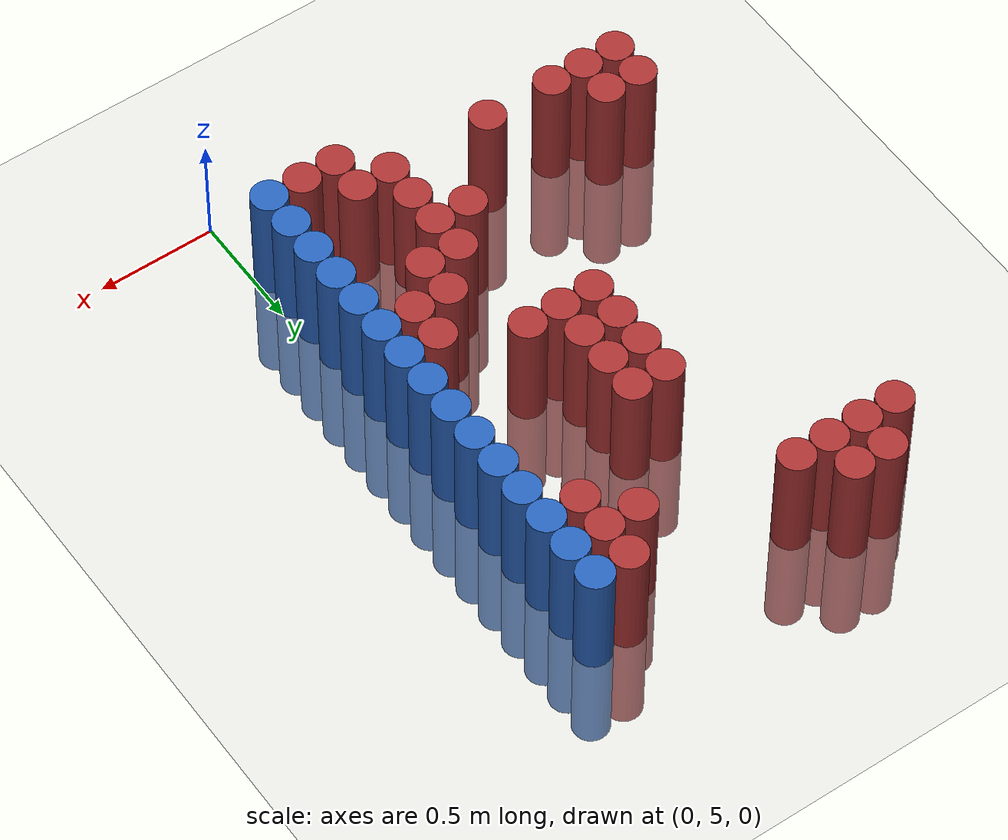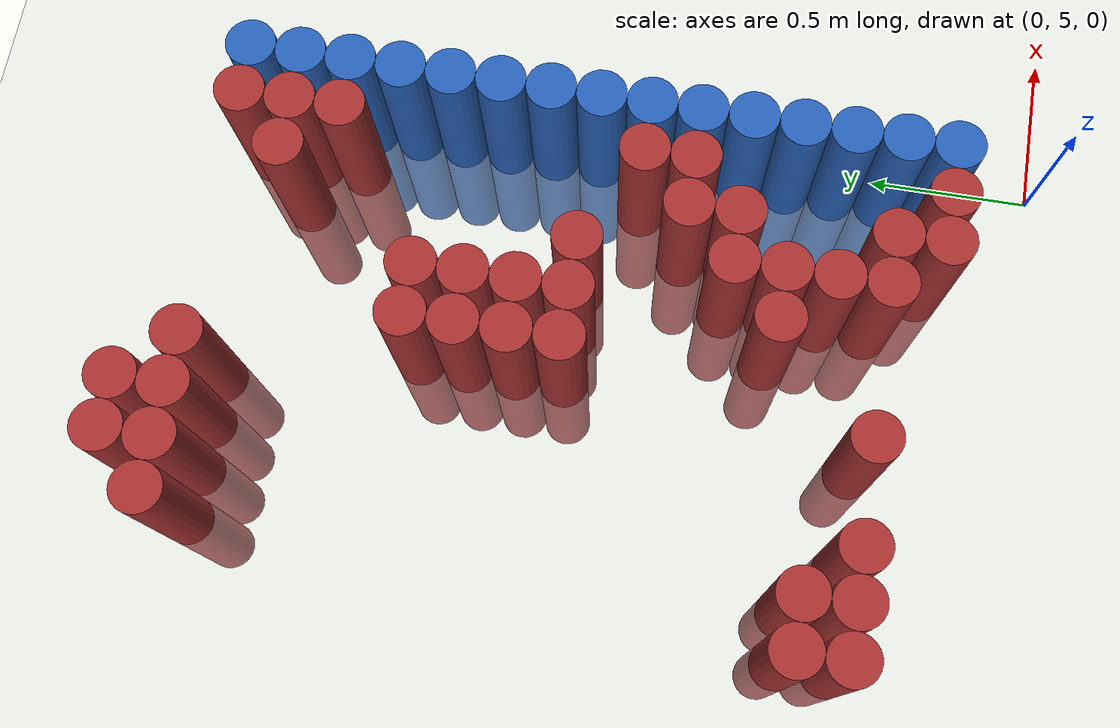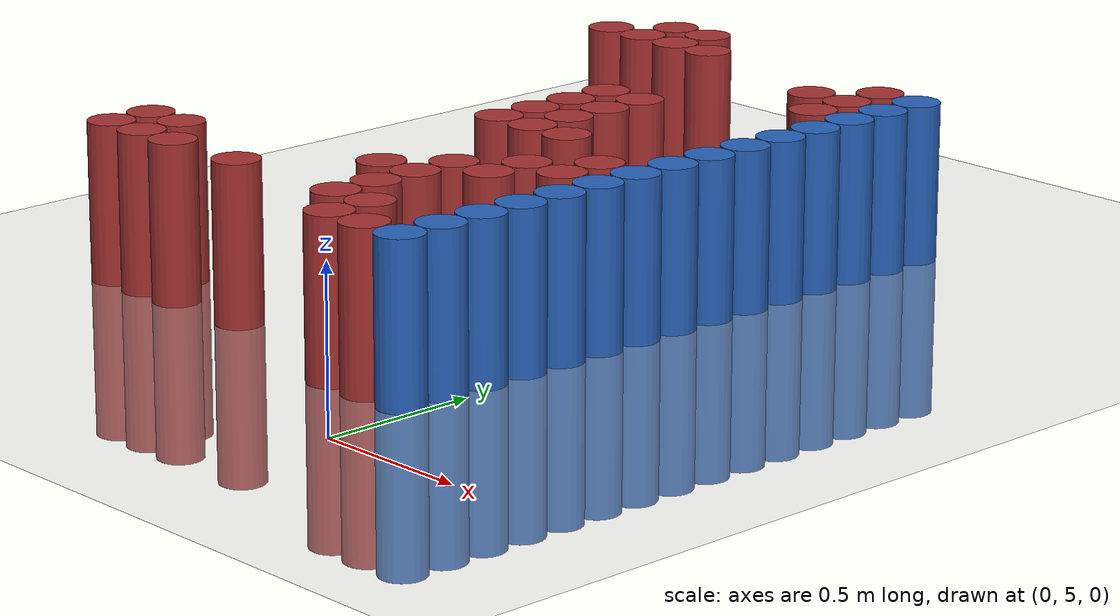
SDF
<sdf version="1.6">
 <world name="default">
  <model name="ground_plane">
   <static>1</static>
   <link name="link">
    <collision name="collision">
     <geometry><plane><normal>0 0 1</normal><size>100 100</size></plane></geometry>
     <surface><friction><ode><mu>100</mu><mu2>50</mu2></ode></friction></surface>
    </collision>
    <visual name="visual">
     <cast_shadows>0</cast_shadows>
     <geometry><plane><normal>0 0 1</normal><size>100 100</size></plane></geometry>
     <material>
      <script><uri>file://media/materials/scripts/gazebo.material</uri><name>Gazebo/Grey</name></script>
     </material>
    </visual>
   </link>
  </model>
  <model name="unit_cylinder_157">
   <static>1</static>
   <pose>-1.575000 5.475000 0.000000 0.000000 0.000000 0.000000</pose>
   <link name="link">
    <inertial>
     <mass>1</mass>
     <inertia><ixx>0.145833</ixx><ixy>0</ixy><ixz>0</ixz><iyy>0.145833</iyy><iyz>0</iyz><izz>0.125</izz></inertia>
    </inertial>
    <collision name="collision">
     <geometry><cylinder><radius>0.075000</radius><length>1</length></cylinder></geometry>
    </collision>
    <visual name="visual">
     <geometry><cylinder><radius>0.075000</radius><length>1</length></cylinder></geometry>
     <material>
      <ambient>0.648000 0.192000 0.192000 1</ambient>
      <diffuse>0.648000 0.192000 0.192000 1</diffuse>
     </material>
     <material>
      <script><name>Gazebo/Grey</name><uri>file://media/materials/scripts/gazebo.material</uri></script>
     </material>
    </visual>
   </link>
  </model>
  <model name="unit_cylinder_158">
   <static>1</static>
   <pose>-1.575000 5.625000 0.000000 0.000000 0.000000 0.000000</pose>
   <link name="link">
    <inertial>
     <mass>1</mass>
     <inertia><ixx>0.145833</ixx><ixy>0</ixy><ixz>0</ixz><iyy>0.145833</iyy><iyz>0</iyz><izz>0.125</izz></inertia>
    </inertial>
    <collision name="collision">
     <geometry><cylinder><radius>0.075000</radius><length>1</length></cylinder></geometry>
    </collision>
    <visual name="visual">
     <geometry><cylinder><radius>0.075000</radius><length>1</length></cylinder></geometry>
     <material>
      <ambient>0.648000 0.192000 0.192000 1</ambient>
      <diffuse>0.648000 0.192000 0.192000 1</diffuse>
     </material>
     <material>
      <script><name>Gazebo/Grey</name><uri>file://media/materials/scripts/gazebo.material</uri></script>
     </material>
    </visual>
   </link>
  </model>
  <model name="unit_cylinder_161">
   <static>1</static>
   <pose>-1.425000 5.475000 0.000000 0.000000 0.000000 0.000000</pose>
   <link name="link">
    <inertial>
     <mass>1</mass>
     <inertia><ixx>0.145833</ixx><ixy>0</ixy><ixz>0</ixz><iyy>0.145833</iyy><iyz>0</iyz><izz>0.125</izz></inertia>
    </inertial>
    <collision name="collision">
     <geometry><cylinder><radius>0.075000</radius><length>1</length></cylinder></geometry>
    </collision>
    <visual name="visual">
     <geometry><cylinder><radius>0.075000</radius><length>1</length></cylinder></geometry>
     <material>
      <ambient>0.648000 0.192000 0.192000 1</ambient>
      <diffuse>0.648000 0.192000 0.192000 1</diffuse>
     </material>
     <material>
      <script><name>Gazebo/Grey</name><uri>file://media/materials/scripts/gazebo.material</uri></script>
     </material>
    </visual>
   </link>
  </model>
  <model name="unit_cylinder_162">
   <static>1</static>
   <pose>-1.425000 5.625000 0.000000 0.000000 0.000000 0.000000</pose>
   <link name="link">
    <inertial>
     <mass>1</mass>
     <inertia><ixx>0.145833</ixx><ixy>0</ixy><ixz>0</ixz><iyy>0.145833</iyy><iyz>0</iyz><izz>0.125</izz></inertia>
    </inertial>
    <collision name="collision">
     <geometry><cylinder><radius>0.075000</radius><length>1</length></cylinder></geometry>
    </collision>
    <visual name="visual">
     <geometry><cylinder><radius>0.075000</radius><length>1</length></cylinder></geometry>
     <material>
      <ambient>0.648000 0.192000 0.192000 1</ambient>
      <diffuse>0.648000 0.192000 0.192000 1</diffuse>
     </material>
     <material>
      <script><name>Gazebo/Grey</name><uri>file://media/materials/scripts/gazebo.material</uri></script>
     </material>
    </visual>
   </link>
  </model>
  <model name="unit_cylinder_163">
   <static>1</static>
   <pose>-1.425000 7.425000 0.000000 0.000000 0.000000 0.000000</pose>
   <link name="link">
    <inertial>
     <mass>1</mass>
     <inertia><ixx>0.145833</ixx><ixy>0</ixy><ixz>0</ixz><iyy>0.145833</iyy><iyz>0</iyz><izz>0.125</izz></inertia>
    </inertial>
    <collision name="collision">
     <geometry><cylinder><radius>0.075000</radius><length>1</length></cylinder></geometry>
    </collision>
    <visual name="visual">
     <geometry><cylinder><radius>0.075000</radius><length>1</length></cylinder></geometry>
     <material>
      <ambient>0.648000 0.192000 0.192000 1</ambient>
      <diffuse>0.648000 0.192000 0.192000 1</diffuse>
     </material>
     <material>
      <script><name>Gazebo/Grey</name><uri>file://media/materials/scripts/gazebo.material</uri></script>
     </material>
    </visual>
   </link>
  </model>
  <model name="unit_cylinder_164">
   <static>1</static>
   <pose>-1.275000 5.475000 0.000000 0.000000 0.000000 0.000000</pose>
   <link name="link">
    <inertial>
     <mass>1</mass>
     <inertia><ixx>0.145833</ixx><ixy>0</ixy><ixz>0</ixz><iyy>0.145833</iyy><iyz>0</iyz><izz>0.125</izz></inertia>
    </inertial>
    <collision name="collision">
     <geometry><cylinder><radius>0.075000</radius><length>1</length></cylinder></geometry>
    </collision>
    <visual name="visual">
     <geometry><cylinder><radius>0.075000</radius><length>1</length></cylinder></geometry>
     <material>
      <ambient>0.648000 0.192000 0.192000 1</ambient>
      <diffuse>0.648000 0.192000 0.192000 1</diffuse>
     </material>
     <material>
      <script><name>Gazebo/Grey</name><uri>file://media/materials/scripts/gazebo.material</uri></script>
     </material>
    </visual>
   </link>
  </model>
  <model name="unit_cylinder_165">
   <static>1</static>
   <pose>-1.275000 7.425000 0.000000 0.000000 0.000000 0.000000</pose>
   <link name="link">
    <inertial>
     <mass>1</mass>
     <inertia><ixx>0.145833</ixx><ixy>0</ixy><ixz>0</ixz><iyy>0.145833</iyy><iyz>0</iyz><izz>0.125</izz></inertia>
    </inertial>
    <collision name="collision">
     <geometry><cylinder><radius>0.075000</radius><length>1</length></cylinder></geometry>
    </collision>
    <visual name="visual">
     <geometry><cylinder><radius>0.075000</radius><length>1</length></cylinder></geometry>
     <material>
      <ambient>0.648000 0.192000 0.192000 1</ambient>
      <diffuse>0.648000 0.192000 0.192000 1</diffuse>
     </material>
     <material>
      <script><name>Gazebo/Grey</name><uri>file://media/materials/scripts/gazebo.material</uri></script>
     </material>
    </visual>
   </link>
  </model>
  <model name="unit_cylinder_166">
   <static>1</static>
   <pose>-1.275000 7.575000 0.000000 0.000000 0.000000 0.000000</pose>
   <link name="link">
    <inertial>
     <mass>1</mass>
     <inertia><ixx>0.145833</ixx><ixy>0</ixy><ixz>0</ixz><iyy>0.145833</iyy><iyz>0</iyz><izz>0.125</izz></inertia>
    </inertial>
    <collision name="collision">
     <geometry><cylinder><radius>0.075000</radius><length>1</length></cylinder></geometry>
    </collision>
    <visual name="visual">
     <geometry><cylinder><radius>0.075000</radius><length>1</length></cylinder></geometry>
     <material>
      <ambient>0.648000 0.192000 0.192000 1</ambient>
      <diffuse>0.648000 0.192000 0.192000 1</diffuse>
     </material>
     <material>
      <script><name>Gazebo/Grey</name><uri>file://media/materials/scripts/gazebo.material</uri></script>
     </material>
    </visual>
   </link>
  </model>
  <model name="unit_cylinder_170">
   <static>1</static>
   <pose>-1.125000 7.425000 0.000000 0.000000 0.000000 0.000000</pose>
   <link name="link">
    <inertial>
     <mass>1</mass>
     <inertia><ixx>0.145833</ixx><ixy>0</ixy><ixz>0</ixz><iyy>0.145833</iyy><iyz>0</iyz><izz>0.125</izz></inertia>
    </inertial>
    <collision name="collision">
     <geometry><cylinder><radius>0.075000</radius><length>1</length></cylinder></geometry>
    </collision>
    <visual name="visual">
     <geometry><cylinder><radius>0.075000</radius><length>1</length></cylinder></geometry>
     <material>
      <ambient>0.648000 0.192000 0.192000 1</ambient>
      <diffuse>0.648000 0.192000 0.192000 1</diffuse>
     </material>
     <material>
      <script><name>Gazebo/Grey</name><uri>file://media/materials/scripts/gazebo.material</uri></script>
     </material>
    </visual>
   </link>
  </model>
  <model name="unit_cylinder_171">
   <static>1</static>
   <pose>-1.125000 7.575000 0.000000 0.000000 0.000000 0.000000</pose>
   <link name="link">
    <inertial>
     <mass>1</mass>
     <inertia><ixx>0.145833</ixx><ixy>0</ixy><ixz>0</ixz><iyy>0.145833</iyy><iyz>0</iyz><izz>0.125</izz></inertia>
    </inertial>
    <collision name="collision">
     <geometry><cylinder><radius>0.075000</radius><length>1</length></cylinder></geometry>
    </collision>
    <visual name="visual">
     <geometry><cylinder><radius>0.075000</radius><length>1</length></cylinder></geometry>
     <material>
      <ambient>0.648000 0.192000 0.192000 1</ambient>
      <diffuse>0.648000 0.192000 0.192000 1</diffuse>
     </material>
     <material>
      <script><name>Gazebo/Grey</name><uri>file://media/materials/scripts/gazebo.material</uri></script>
     </material>
    </visual>
   </link>
  </model>
  <model name="unit_cylinder_180">
   <static>1</static>
   <pose>-0.975000 5.475000 0.000000 0.000000 0.000000 0.000000</pose>
   <link name="link">
    <inertial>
     <mass>1</mass>
     <inertia><ixx>0.145833</ixx><ixy>0</ixy><ixz>0</ixz><iyy>0.145833</iyy><iyz>0</iyz><izz>0.125</izz></inertia>
    </inertial>
    <collision name="collision">
     <geometry><cylinder><radius>0.075000</radius><length>1</length></cylinder></geometry>
    </collision>
    <visual name="visual">
     <geometry><cylinder><radius>0.075000</radius><length>1</length></cylinder></geometry>
     <material>
      <ambient>0.648000 0.192000 0.192000 1</ambient>
      <diffuse>0.648000 0.192000 0.192000 1</diffuse>
     </material>
     <material>
      <script><name>Gazebo/Grey</name><uri>file://media/materials/scripts/gazebo.material</uri></script>
     </material>
    </visual>
   </link>
  </model>
  <model name="unit_cylinder_181">
   <static>1</static>
   <pose>-0.975000 7.425000 0.000000 0.000000 0.000000 0.000000</pose>
   <link name="link">
    <inertial>
     <mass>1</mass>
     <inertia><ixx>0.145833</ixx><ixy>0</ixy><ixz>0</ixz><iyy>0.145833</iyy><iyz>0</iyz><izz>0.125</izz></inertia>
    </inertial>
    <collision name="collision">
     <geometry><cylinder><radius>0.075000</radius><length>1</length></cylinder></geometry>
    </collision>
    <visual name="visual">
     <geometry><cylinder><radius>0.075000</radius><length>1</length></cylinder></geometry>
     <material>
      <ambient>0.648000 0.192000 0.192000 1</ambient>
      <diffuse>0.648000 0.192000 0.192000 1</diffuse>
     </material>
     <material>
      <script><name>Gazebo/Grey</name><uri>file://media/materials/scripts/gazebo.material</uri></script>
     </material>
    </visual>
   </link>
  </model>
  <model name="unit_cylinder_191">
   <static>1</static>
   <pose>-0.825000 6.375000 0.000000 0.000000 0.000000 0.000000</pose>
   <link name="link">
    <inertial>
     <mass>1</mass>
     <inertia><ixx>0.145833</ixx><ixy>0</ixy><ixz>0</ixz><iyy>0.145833</iyy><iyz>0</iyz><izz>0.125</izz></inertia>
    </inertial>
    <collision name="collision">
     <geometry><cylinder><radius>0.075000</radius><length>1</length></cylinder></geometry>
    </collision>
    <visual name="visual">
     <geometry><cylinder><radius>0.075000</radius><length>1</length></cylinder></geometry>
     <material>
      <ambient>0.648000 0.192000 0.192000 1</ambient>
      <diffuse>0.648000 0.192000 0.192000 1</diffuse>
     </material>
     <material>
      <script><name>Gazebo/Grey</name><uri>file://media/materials/scripts/gazebo.material</uri></script>
     </material>
    </visual>
   </link>
  </model>
  <model name="unit_cylinder_192">
   <static>1</static>
   <pose>-0.825000 6.525000 0.000000 0.000000 0.000000 0.000000</pose>
   <link name="link">
    <inertial>
     <mass>1</mass>
     <inertia><ixx>0.145833</ixx><ixy>0</ixy><ixz>0</ixz><iyy>0.145833</iyy><iyz>0</iyz><izz>0.125</izz></inertia>
    </inertial>
    <collision name="collision">
     <geometry><cylinder><radius>0.075000</radius><length>1</length></cylinder></geometry>
    </collision>
    <visual name="visual">
     <geometry><cylinder><radius>0.075000</radius><length>1</length></cylinder></geometry>
     <material>
      <ambient>0.648000 0.192000 0.192000 1</ambient>
      <diffuse>0.648000 0.192000 0.192000 1</diffuse>
     </material>
     <material>
      <script><name>Gazebo/Grey</name><uri>file://media/materials/scripts/gazebo.material</uri></script>
     </material>
    </visual>
   </link>
  </model>
  <model name="unit_cylinder_193">
   <static>1</static>
   <pose>-0.825000 6.675000 0.000000 0.000000 0.000000 0.000000</pose>
   <link name="link">
    <inertial>
     <mass>1</mass>
     <inertia><ixx>0.145833</ixx><ixy>0</ixy><ixz>0</ixz><iyy>0.145833</iyy><iyz>0</iyz><izz>0.125</izz></inertia>
    </inertial>
    <collision name="collision">
     <geometry><cylinder><radius>0.075000</radius><length>1</length></cylinder></geometry>
    </collision>
    <visual name="visual">
     <geometry><cylinder><radius>0.075000</radius><length>1</length></cylinder></geometry>
     <material>
      <ambient>0.648000 0.192000 0.192000 1</ambient>
      <diffuse>0.648000 0.192000 0.192000 1</diffuse>
     </material>
     <material>
      <script><name>Gazebo/Grey</name><uri>file://media/materials/scripts/gazebo.material</uri></script>
     </material>
    </visual>
   </link>
  </model>
  <model name="unit_cylinder_194">
   <static>1</static>
   <pose>-0.825000 6.825000 0.000000 0.000000 0.000000 0.000000</pose>
   <link name="link">
    <inertial>
     <mass>1</mass>
     <inertia><ixx>0.145833</ixx><ixy>0</ixy><ixz>0</ixz><iyy>0.145833</iyy><iyz>0</iyz><izz>0.125</izz></inertia>
    </inertial>
    <collision name="collision">
     <geometry><cylinder><radius>0.075000</radius><length>1</length></cylinder></geometry>
    </collision>
    <visual name="visual">
     <geometry><cylinder><radius>0.075000</radius><length>1</length></cylinder></geometry>
     <material>
      <ambient>0.648000 0.192000 0.192000 1</ambient>
      <diffuse>0.648000 0.192000 0.192000 1</diffuse>
     </material>
     <material>
      <script><name>Gazebo/Grey</name><uri>file://media/materials/scripts/gazebo.material</uri></script>
     </material>
    </visual>
   </link>
  </model>
  <model name="unit_cylinder_197">
   <static>1</static>
   <pose>-0.675000 5.775000 0.000000 0.000000 0.000000 0.000000</pose>
   <link name="link">
    <inertial>
     <mass>1</mass>
     <inertia><ixx>0.145833</ixx><ixy>0</ixy><ixz>0</ixz><iyy>0.145833</iyy><iyz>0</iyz><izz>0.125</izz></inertia>
    </inertial>
    <collision name="collision">
     <geometry><cylinder><radius>0.075000</radius><length>1</length></cylinder></geometry>
    </collision>
    <visual name="visual">
     <geometry><cylinder><radius>0.075000</radius><length>1</length></cylinder></geometry>
     <material>
      <ambient>0.648000 0.192000 0.192000 1</ambient>
      <diffuse>0.648000 0.192000 0.192000 1</diffuse>
     </material>
     <material>
      <script><name>Gazebo/Grey</name><uri>file://media/materials/scripts/gazebo.material</uri></script>
     </material>
    </visual>
   </link>
  </model>
  <model name="unit_cylinder_198">
   <static>1</static>
   <pose>-0.675000 6.375000 0.000000 0.000000 0.000000 0.000000</pose>
   <link name="link">
    <inertial>
     <mass>1</mass>
     <inertia><ixx>0.145833</ixx><ixy>0</ixy><ixz>0</ixz><iyy>0.145833</iyy><iyz>0</iyz><izz>0.125</izz></inertia>
    </inertial>
    <collision name="collision">
     <geometry><cylinder><radius>0.075000</radius><length>1</length></cylinder></geometry>
    </collision>
    <visual name="visual">
     <geometry><cylinder><radius>0.075000</radius><length>1</length></cylinder></geometry>
     <material>
      <ambient>0.648000 0.192000 0.192000 1</ambient>
      <diffuse>0.648000 0.192000 0.192000 1</diffuse>
     </material>
     <material>
      <script><name>Gazebo/Grey</name><uri>file://media/materials/scripts/gazebo.material</uri></script>
     </material>
    </visual>
   </link>
  </model>
  <model name="unit_cylinder_199">
   <static>1</static>
   <pose>-0.675000 6.525000 0.000000 0.000000 0.000000 0.000000</pose>
   <link name="link">
    <inertial>
     <mass>1</mass>
     <inertia><ixx>0.145833</ixx><ixy>0</ixy><ixz>0</ixz><iyy>0.145833</iyy><iyz>0</iyz><izz>0.125</izz></inertia>
    </inertial>
    <collision name="collision">
     <geometry><cylinder><radius>0.075000</radius><length>1</length></cylinder></geometry>
    </collision>
    <visual name="visual">
     <geometry><cylinder><radius>0.075000</radius><length>1</length></cylinder></geometry>
     <material>
      <ambient>0.648000 0.192000 0.192000 1</ambient>
      <diffuse>0.648000 0.192000 0.192000 1</diffuse>
     </material>
     <material>
      <script><name>Gazebo/Grey</name><uri>file://media/materials/scripts/gazebo.material</uri></script>
     </material>
    </visual>
   </link>
  </model>
  <model name="unit_cylinder_200">
   <static>1</static>
   <pose>-0.675000 6.675000 0.000000 0.000000 0.000000 0.000000</pose>
   <link name="link">
    <inertial>
     <mass>1</mass>
     <inertia><ixx>0.145833</ixx><ixy>0</ixy><ixz>0</ixz><iyy>0.145833</iyy><iyz>0</iyz><izz>0.125</izz></inertia>
    </inertial>
    <collision name="collision">
     <geometry><cylinder><radius>0.075000</radius><length>1</length></cylinder></geometry>
    </collision>
    <visual name="visual">
     <geometry><cylinder><radius>0.075000</radius><length>1</length></cylinder></geometry>
     <material>
      <ambient>0.648000 0.192000 0.192000 1</ambient>
      <diffuse>0.648000 0.192000 0.192000 1</diffuse>
     </material>
     <material>
      <script><name>Gazebo/Grey</name><uri>file://media/materials/scripts/gazebo.material</uri></script>
     </material>
    </visual>
   </link>
  </model>
  <model name="unit_cylinder_201">
   <static>1</static>
   <pose>-0.675000 6.825000 0.000000 0.000000 0.000000 0.000000</pose>
   <link name="link">
    <inertial>
     <mass>1</mass>
     <inertia><ixx>0.145833</ixx><ixy>0</ixy><ixz>0</ixz><iyy>0.145833</iyy><iyz>0</iyz><izz>0.125</izz></inertia>
    </inertial>
    <collision name="collision">
     <geometry><cylinder><radius>0.075000</radius><length>1</length></cylinder></geometry>
    </collision>
    <visual name="visual">
     <geometry><cylinder><radius>0.075000</radius><length>1</length></cylinder></geometry>
     <material>
      <ambient>0.648000 0.192000 0.192000 1</ambient>
      <diffuse>0.648000 0.192000 0.192000 1</diffuse>
     </material>
     <material>
      <script><name>Gazebo/Grey</name><uri>file://media/materials/scripts/gazebo.material</uri></script>
     </material>
    </visual>
   </link>
  </model>
  <model name="unit_cylinder_202">
   <static>1</static>
   <pose>-0.525000 5.475000 0.000000 0.000000 0.000000 0.000000</pose>
   <link name="link">
    <inertial>
     <mass>1</mass>
     <inertia><ixx>0.145833</ixx><ixy>0</ixy><ixz>0</ixz><iyy>0.145833</iyy><iyz>0</iyz><izz>0.125</izz></inertia>
    </inertial>
    <collision name="collision">
     <geometry><cylinder><radius>0.075000</radius><length>1</length></cylinder></geometry>
    </collision>
    <visual name="visual">
     <geometry><cylinder><radius>0.075000</radius><length>1</length></cylinder></geometry>
     <material>
      <ambient>0.648000 0.192000 0.192000 1</ambient>
      <diffuse>0.648000 0.192000 0.192000 1</diffuse>
     </material>
     <material>
      <script><name>Gazebo/Grey</name><uri>file://media/materials/scripts/gazebo.material</uri></script>
     </material>
    </visual>
   </link>
  </model>
  <model name="unit_cylinder_203">
   <static>1</static>
   <pose>-0.525000 5.625000 0.000000 0.000000 0.000000 0.000000</pose>
   <link name="link">
    <inertial>
     <mass>1</mass>
     <inertia><ixx>0.145833</ixx><ixy>0</ixy><ixz>0</ixz><iyy>0.145833</iyy><iyz>0</iyz><izz>0.125</izz></inertia>
    </inertial>
    <collision name="collision">
     <geometry><cylinder><radius>0.075000</radius><length>1</length></cylinder></geometry>
    </collision>
    <visual name="visual">
     <geometry><cylinder><radius>0.075000</radius><length>1</length></cylinder></geometry>
     <material>
      <ambient>0.648000 0.192000 0.192000 1</ambient>
      <diffuse>0.648000 0.192000 0.192000 1</diffuse>
     </material>
     <material>
      <script><name>Gazebo/Grey</name><uri>file://media/materials/scripts/gazebo.material</uri></script>
     </material>
    </visual>
   </link>
  </model>
  <model name="unit_cylinder_204">
   <static>1</static>
   <pose>-0.525000 5.775000 0.000000 0.000000 0.000000 0.000000</pose>
   <link name="link">
    <inertial>
     <mass>1</mass>
     <inertia><ixx>0.145833</ixx><ixy>0</ixy><ixz>0</ixz><iyy>0.145833</iyy><iyz>0</iyz><izz>0.125</izz></inertia>
    </inertial>
    <collision name="collision">
     <geometry><cylinder><radius>0.075000</radius><length>1</length></cylinder></geometry>
    </collision>
    <visual name="visual">
     <geometry><cylinder><radius>0.075000</radius><length>1</length></cylinder></geometry>
     <material>
      <ambient>0.648000 0.192000 0.192000 1</ambient>
      <diffuse>0.648000 0.192000 0.192000 1</diffuse>
     </material>
     <material>
      <script><name>Gazebo/Grey</name><uri>file://media/materials/scripts/gazebo.material</uri></script>
     </material>
    </visual>
   </link>
  </model>
  <model name="unit_cylinder_205">
   <static>1</static>
   <pose>-0.525000 5.925000 0.000000 0.000000 0.000000 0.000000</pose>
   <link name="link">
    <inertial>
     <mass>1</mass>
     <inertia><ixx>0.145833</ixx><ixy>0</ixy><ixz>0</ixz><iyy>0.145833</iyy><iyz>0</iyz><izz>0.125</izz></inertia>
    </inertial>
    <collision name="collision">
     <geometry><cylinder><radius>0.075000</radius><length>1</length></cylinder></geometry>
    </collision>
    <visual name="visual">
     <geometry><cylinder><radius>0.075000</radius><length>1</length></cylinder></geometry>
     <material>
      <ambient>0.648000 0.192000 0.192000 1</ambient>
      <diffuse>0.648000 0.192000 0.192000 1</diffuse>
     </material>
     <material>
      <script><name>Gazebo/Grey</name><uri>file://media/materials/scripts/gazebo.material</uri></script>
     </material>
    </visual>
   </link>
  </model>
  <model name="unit_cylinder_206">
   <static>1</static>
   <pose>-0.525000 6.375000 0.000000 0.000000 0.000000 0.000000</pose>
   <link name="link">
    <inertial>
     <mass>1</mass>
     <inertia><ixx>0.145833</ixx><ixy>0</ixy><ixz>0</ixz><iyy>0.145833</iyy><iyz>0</iyz><izz>0.125</izz></inertia>
    </inertial>
    <collision name="collision">
     <geometry><cylinder><radius>0.075000</radius><length>1</length></cylinder></geometry>
    </collision>
    <visual name="visual">
     <geometry><cylinder><radius>0.075000</radius><length>1</length></cylinder></geometry>
     <material>
      <ambient>0.648000 0.192000 0.192000 1</ambient>
      <diffuse>0.648000 0.192000 0.192000 1</diffuse>
     </material>
     <material>
      <script><name>Gazebo/Grey</name><uri>file://media/materials/scripts/gazebo.material</uri></script>
     </material>
    </visual>
   </link>
  </model>
  <model name="unit_cylinder_209">
   <static>1</static>
   <pose>-0.375000 5.325000 0.000000 0.000000 0.000000 0.000000</pose>
   <link name="link">
    <inertial>
     <mass>1</mass>
     <inertia><ixx>0.145833</ixx><ixy>0</ixy><ixz>0</ixz><iyy>0.145833</iyy><iyz>0</iyz><izz>0.125</izz></inertia>
    </inertial>
    <collision name="collision">
     <geometry><cylinder><radius>0.075000</radius><length>1</length></cylinder></geometry>
    </collision>
    <visual name="visual">
     <geometry><cylinder><radius>0.075000</radius><length>1</length></cylinder></geometry>
     <material>
      <ambient>0.648000 0.192000 0.192000 1</ambient>
      <diffuse>0.648000 0.192000 0.192000 1</diffuse>
     </material>
     <material>
      <script><name>Gazebo/Grey</name><uri>file://media/materials/scripts/gazebo.material</uri></script>
     </material>
    </visual>
   </link>
  </model>
  <model name="unit_cylinder_210">
   <static>1</static>
   <pose>-0.375000 5.475000 0.000000 0.000000 0.000000 0.000000</pose>
   <link name="link">
    <inertial>
     <mass>1</mass>
     <inertia><ixx>0.145833</ixx><ixy>0</ixy><ixz>0</ixz><iyy>0.145833</iyy><iyz>0</iyz><izz>0.125</izz></inertia>
    </inertial>
    <collision name="collision">
     <geometry><cylinder><radius>0.075000</radius><length>1</length></cylinder></geometry>
    </collision>
    <visual name="visual">
     <geometry><cylinder><radius>0.075000</radius><length>1</length></cylinder></geometry>
     <material>
      <ambient>0.648000 0.192000 0.192000 1</ambient>
      <diffuse>0.648000 0.192000 0.192000 1</diffuse>
     </material>
     <material>
      <script><name>Gazebo/Grey</name><uri>file://media/materials/scripts/gazebo.material</uri></script>
     </material>
    </visual>
   </link>
  </model>
  <model name="unit_cylinder_211">
   <static>1</static>
   <pose>-0.375000 5.925000 0.000000 0.000000 0.000000 0.000000</pose>
   <link name="link">
    <inertial>
     <mass>1</mass>
     <inertia><ixx>0.145833</ixx><ixy>0</ixy><ixz>0</ixz><iyy>0.145833</iyy><iyz>0</iyz><izz>0.125</izz></inertia>
    </inertial>
    <collision name="collision">
     <geometry><cylinder><radius>0.075000</radius><length>1</length></cylinder></geometry>
    </collision>
    <visual name="visual">
     <geometry><cylinder><radius>0.075000</radius><length>1</length></cylinder></geometry>
     <material>
      <ambient>0.648000 0.192000 0.192000 1</ambient>
      <diffuse>0.648000 0.192000 0.192000 1</diffuse>
     </material>
     <material>
      <script><name>Gazebo/Grey</name><uri>file://media/materials/scripts/gazebo.material</uri></script>
     </material>
    </visual>
   </link>
  </model>
  <model name="unit_cylinder_212">
   <static>1</static>
   <pose>-0.375000 6.075000 0.000000 0.000000 0.000000 0.000000</pose>
   <link name="link">
    <inertial>
     <mass>1</mass>
     <inertia><ixx>0.145833</ixx><ixy>0</ixy><ixz>0</ixz><iyy>0.145833</iyy><iyz>0</iyz><izz>0.125</izz></inertia>
    </inertial>
    <collision name="collision">
     <geometry><cylinder><radius>0.075000</radius><length>1</length></cylinder></geometry>
    </collision>
    <visual name="visual">
     <geometry><cylinder><radius>0.075000</radius><length>1</length></cylinder></geometry>
     <material>
      <ambient>0.648000 0.192000 0.192000 1</ambient>
      <diffuse>0.648000 0.192000 0.192000 1</diffuse>
     </material>
     <material>
      <script><name>Gazebo/Grey</name><uri>file://media/materials/scripts/gazebo.material</uri></script>
     </material>
    </visual>
   </link>
  </model>
  <model name="unit_cylinder_213">
   <static>1</static>
   <pose>-0.375000 7.275000 0.000000 0.000000 0.000000 0.000000</pose>
   <link name="link">
    <inertial>
     <mass>1</mass>
     <inertia><ixx>0.145833</ixx><ixy>0</ixy><ixz>0</ixz><iyy>0.145833</iyy><iyz>0</iyz><izz>0.125</izz></inertia>
    </inertial>
    <collision name="collision">
     <geometry><cylinder><radius>0.075000</radius><length>1</length></cylinder></geometry>
    </collision>
    <visual name="visual">
     <geometry><cylinder><radius>0.075000</radius><length>1</length></cylinder></geometry>
     <material>
      <ambient>0.648000 0.192000 0.192000 1</ambient>
      <diffuse>0.648000 0.192000 0.192000 1</diffuse>
     </material>
     <material>
      <script><name>Gazebo/Grey</name><uri>file://media/materials/scripts/gazebo.material</uri></script>
     </material>
    </visual>
   </link>
  </model>
  <model name="unit_cylinder_221">
   <static>1</static>
   <pose>-0.225000 5.325000 0.000000 0.000000 0.000000 0.000000</pose>
   <link name="link">
    <inertial>
     <mass>1</mass>
     <inertia><ixx>0.145833</ixx><ixy>0</ixy><ixz>0</ixz><iyy>0.145833</iyy><iyz>0</iyz><izz>0.125</izz></inertia>
    </inertial>
    <collision name="collision">
     <geometry><cylinder><radius>0.075000</radius><length>1</length></cylinder></geometry>
    </collision>
    <visual name="visual">
     <geometry><cylinder><radius>0.075000</radius><length>1</length></cylinder></geometry>
     <material>
      <ambient>0.648000 0.192000 0.192000 1</ambient>
      <diffuse>0.648000 0.192000 0.192000 1</diffuse>
     </material>
     <material>
      <script><name>Gazebo/Grey</name><uri>file://media/materials/scripts/gazebo.material</uri></script>
     </material>
    </visual>
   </link>
  </model>
  <model name="unit_cylinder_222">
   <static>1</static>
   <pose>-0.225000 6.075000 0.000000 0.000000 0.000000 0.000000</pose>
   <link name="link">
    <inertial>
     <mass>1</mass>
     <inertia><ixx>0.145833</ixx><ixy>0</ixy><ixz>0</ixz><iyy>0.145833</iyy><iyz>0</iyz><izz>0.125</izz></inertia>
    </inertial>
    <collision name="collision">
     <geometry><cylinder><radius>0.075000</radius><length>1</length></cylinder></geometry>
    </collision>
    <visual name="visual">
     <geometry><cylinder><radius>0.075000</radius><length>1</length></cylinder></geometry>
     <material>
      <ambient>0.648000 0.192000 0.192000 1</ambient>
      <diffuse>0.648000 0.192000 0.192000 1</diffuse>
     </material>
     <material>
      <script><name>Gazebo/Grey</name><uri>file://media/materials/scripts/gazebo.material</uri></script>
     </material>
    </visual>
   </link>
  </model>
  <model name="unit_cylinder_223">
   <static>1</static>
   <pose>-0.225000 6.225000 0.000000 0.000000 0.000000 0.000000</pose>
   <link name="link">
    <inertial>
     <mass>1</mass>
     <inertia><ixx>0.145833</ixx><ixy>0</ixy><ixz>0</ixz><iyy>0.145833</iyy><iyz>0</iyz><izz>0.125</izz></inertia>
    </inertial>
    <collision name="collision">
     <geometry><cylinder><radius>0.075000</radius><length>1</length></cylinder></geometry>
    </collision>
    <visual name="visual">
     <geometry><cylinder><radius>0.075000</radius><length>1</length></cylinder></geometry>
     <material>
      <ambient>0.648000 0.192000 0.192000 1</ambient>
      <diffuse>0.648000 0.192000 0.192000 1</diffuse>
     </material>
     <material>
      <script><name>Gazebo/Grey</name><uri>file://media/materials/scripts/gazebo.material</uri></script>
     </material>
    </visual>
   </link>
  </model>
  <model name="unit_cylinder_224">
   <static>1</static>
   <pose>-0.225000 7.125000 0.000000 0.000000 0.000000 0.000000</pose>
   <link name="link">
    <inertial>
     <mass>1</mass>
     <inertia><ixx>0.145833</ixx><ixy>0</ixy><ixz>0</ixz><iyy>0.145833</iyy><iyz>0</iyz><izz>0.125</izz></inertia>
    </inertial>
    <collision name="collision">
     <geometry><cylinder><radius>0.075000</radius><length>1</length></cylinder></geometry>
    </collision>
    <visual name="visual">
     <geometry><cylinder><radius>0.075000</radius><length>1</length></cylinder></geometry>
     <material>
      <ambient>0.648000 0.192000 0.192000 1</ambient>
      <diffuse>0.648000 0.192000 0.192000 1</diffuse>
     </material>
     <material>
      <script><name>Gazebo/Grey</name><uri>file://media/materials/scripts/gazebo.material</uri></script>
     </material>
    </visual>
   </link>
  </model>
  <model name="unit_cylinder_225">
   <static>1</static>
   <pose>-0.225000 7.275000 0.000000 0.000000 0.000000 0.000000</pose>
   <link name="link">
    <inertial>
     <mass>1</mass>
     <inertia><ixx>0.145833</ixx><ixy>0</ixy><ixz>0</ixz><iyy>0.145833</iyy><iyz>0</iyz><izz>0.125</izz></inertia>
    </inertial>
    <collision name="collision">
     <geometry><cylinder><radius>0.075000</radius><length>1</length></cylinder></geometry>
    </collision>
    <visual name="visual">
     <geometry><cylinder><radius>0.075000</radius><length>1</length></cylinder></geometry>
     <material>
      <ambient>0.648000 0.192000 0.192000 1</ambient>
      <diffuse>0.648000 0.192000 0.192000 1</diffuse>
     </material>
     <material>
      <script><name>Gazebo/Grey</name><uri>file://media/materials/scripts/gazebo.material</uri></script>
     </material>
    </visual>
   </link>
  </model>
  <model name="unit_cylinder_226">
   <static>1</static>
   <pose>-0.225000 7.425000 0.000000 0.000000 0.000000 0.000000</pose>
   <link name="link">
    <inertial>
     <mass>1</mass>
     <inertia><ixx>0.145833</ixx><ixy>0</ixy><ixz>0</ixz><iyy>0.145833</iyy><iyz>0</iyz><izz>0.125</izz></inertia>
    </inertial>
    <collision name="collision">
     <geometry><cylinder><radius>0.075000</radius><length>1</length></cylinder></geometry>
    </collision>
    <visual name="visual">
     <geometry><cylinder><radius>0.075000</radius><length>1</length></cylinder></geometry>
     <material>
      <ambient>0.648000 0.192000 0.192000 1</ambient>
      <diffuse>0.648000 0.192000 0.192000 1</diffuse>
     </material>
     <material>
      <script><name>Gazebo/Grey</name><uri>file://media/materials/scripts/gazebo.material</uri></script>
     </material>
    </visual>
   </link>
  </model>
  <model name="unit_cylinder_235">
   <static>1</static>
   <pose>-0.075000 5.325000 0.000000 0.000000 0.000000 0.000000</pose>
   <link name="link">
    <inertial>
     <mass>1</mass>
     <inertia><ixx>0.145833</ixx><ixy>0</ixy><ixz>0</ixz><iyy>0.145833</iyy><iyz>0</iyz><izz>0.125</izz></inertia>
    </inertial>
    <collision name="collision">
     <geometry><cylinder><radius>0.075000</radius><length>1</length></cylinder></geometry>
    </collision>
    <visual name="visual">
     <geometry><cylinder><radius>0.075000</radius><length>1</length></cylinder></geometry>
     <material>
      <ambient>0.152000 0.379000 0.720000 1</ambient>
      <diffuse>0.152000 0.379000 0.720000 1</diffuse>
     </material>
     <material>
      <script><name>Gazebo/Grey</name><uri>file://media/materials/scripts/gazebo.material</uri></script>
     </material>
    </visual>
   </link>
  </model>
  <model name="unit_cylinder_236">
   <static>1</static>
   <pose>-0.075000 5.475000 0.000000 0.000000 0.000000 0.000000</pose>
   <link name="link">
    <inertial>
     <mass>1</mass>
     <inertia><ixx>0.145833</ixx><ixy>0</ixy><ixz>0</ixz><iyy>0.145833</iyy><iyz>0</iyz><izz>0.125</izz></inertia>
    </inertial>
    <collision name="collision">
     <geometry><cylinder><radius>0.075000</radius><length>1</length></cylinder></geometry>
    </collision>
    <visual name="visual">
     <geometry><cylinder><radius>0.075000</radius><length>1</length></cylinder></geometry>
     <material>
      <ambient>0.152000 0.379000 0.720000 1</ambient>
      <diffuse>0.152000 0.379000 0.720000 1</diffuse>
     </material>
     <material>
      <script><name>Gazebo/Grey</name><uri>file://media/materials/scripts/gazebo.material</uri></script>
     </material>
    </visual>
   </link>
  </model>
  <model name="unit_cylinder_237">
   <static>1</static>
   <pose>-0.075000 5.625000 0.000000 0.000000 0.000000 0.000000</pose>
   <link name="link">
    <inertial>
     <mass>1</mass>
     <inertia><ixx>0.145833</ixx><ixy>0</ixy><ixz>0</ixz><iyy>0.145833</iyy><iyz>0</iyz><izz>0.125</izz></inertia>
    </inertial>
    <collision name="collision">
     <geometry><cylinder><radius>0.075000</radius><length>1</length></cylinder></geometry>
    </collision>
    <visual name="visual">
     <geometry><cylinder><radius>0.075000</radius><length>1</length></cylinder></geometry>
     <material>
      <ambient>0.152000 0.379000 0.720000 1</ambient>
      <diffuse>0.152000 0.379000 0.720000 1</diffuse>
     </material>
     <material>
      <script><name>Gazebo/Grey</name><uri>file://media/materials/scripts/gazebo.material</uri></script>
     </material>
    </visual>
   </link>
  </model>
  <model name="unit_cylinder_238">
   <static>1</static>
   <pose>-0.075000 5.775000 0.000000 0.000000 0.000000 0.000000</pose>
   <link name="link">
    <inertial>
     <mass>1</mass>
     <inertia><ixx>0.145833</ixx><ixy>0</ixy><ixz>0</ixz><iyy>0.145833</iyy><iyz>0</iyz><izz>0.125</izz></inertia>
    </inertial>
    <collision name="collision">
     <geometry><cylinder><radius>0.075000</radius><length>1</length></cylinder></geometry>
    </collision>
    <visual name="visual">
     <geometry><cylinder><radius>0.075000</radius><length>1</length></cylinder></geometry>
     <material>
      <ambient>0.152000 0.379000 0.720000 1</ambient>
      <diffuse>0.152000 0.379000 0.720000 1</diffuse>
     </material>
     <material>
      <script><name>Gazebo/Grey</name><uri>file://media/materials/scripts/gazebo.material</uri></script>
     </material>
    </visual>
   </link>
  </model>
  <model name="unit_cylinder_239">
   <static>1</static>
   <pose>-0.075000 5.925000 0.000000 0.000000 0.000000 0.000000</pose>
   <link name="link">
    <inertial>
     <mass>1</mass>
     <inertia><ixx>0.145833</ixx><ixy>0</ixy><ixz>0</ixz><iyy>0.145833</iyy><iyz>0</iyz><izz>0.125</izz></inertia>
    </inertial>
    <collision name="collision">
     <geometry><cylinder><radius>0.075000</radius><length>1</length></cylinder></geometry>
    </collision>
    <visual name="visual">
     <geometry><cylinder><radius>0.075000</radius><length>1</length></cylinder></geometry>
     <material>
      <ambient>0.152000 0.379000 0.720000 1</ambient>
      <diffuse>0.152000 0.379000 0.720000 1</diffuse>
     </material>
     <material>
      <script><name>Gazebo/Grey</name><uri>file://media/materials/scripts/gazebo.material</uri></script>
     </material>
    </visual>
   </link>
  </model>
  <model name="unit_cylinder_240">
   <static>1</static>
   <pose>-0.075000 6.075000 0.000000 0.000000 0.000000 0.000000</pose>
   <link name="link">
    <inertial>
     <mass>1</mass>
     <inertia><ixx>0.145833</ixx><ixy>0</ixy><ixz>0</ixz><iyy>0.145833</iyy><iyz>0</iyz><izz>0.125</izz></inertia>
    </inertial>
    <collision name="collision">
     <geometry><cylinder><radius>0.075000</radius><length>1</length></cylinder></geometry>
    </collision>
    <visual name="visual">
     <geometry><cylinder><radius>0.075000</radius><length>1</length></cylinder></geometry>
     <material>
      <ambient>0.152000 0.379000 0.720000 1</ambient>
      <diffuse>0.152000 0.379000 0.720000 1</diffuse>
     </material>
     <material>
      <script><name>Gazebo/Grey</name><uri>file://media/materials/scripts/gazebo.material</uri></script>
     </material>
    </visual>
   </link>
  </model>
  <model name="unit_cylinder_241">
   <static>1</static>
   <pose>-0.075000 6.225000 0.000000 0.000000 0.000000 0.000000</pose>
   <link name="link">
    <inertial>
     <mass>1</mass>
     <inertia><ixx>0.145833</ixx><ixy>0</ixy><ixz>0</ixz><iyy>0.145833</iyy><iyz>0</iyz><izz>0.125</izz></inertia>
    </inertial>
    <collision name="collision">
     <geometry><cylinder><radius>0.075000</radius><length>1</length></cylinder></geometry>
    </collision>
    <visual name="visual">
     <geometry><cylinder><radius>0.075000</radius><length>1</length></cylinder></geometry>
     <material>
      <ambient>0.152000 0.379000 0.720000 1</ambient>
      <diffuse>0.152000 0.379000 0.720000 1</diffuse>
     </material>
     <material>
      <script><name>Gazebo/Grey</name><uri>file://media/materials/scripts/gazebo.material</uri></script>
     </material>
    </visual>
   </link>
  </model>
  <model name="unit_cylinder_242">
   <static>1</static>
   <pose>-0.075000 6.375000 0.000000 0.000000 0.000000 0.000000</pose>
   <link name="link">
    <inertial>
     <mass>1</mass>
     <inertia><ixx>0.145833</ixx><ixy>0</ixy><ixz>0</ixz><iyy>0.145833</iyy><iyz>0</iyz><izz>0.125</izz></inertia>
    </inertial>
    <collision name="collision">
     <geometry><cylinder><radius>0.075000</radius><length>1</length></cylinder></geometry>
    </collision>
    <visual name="visual">
     <geometry><cylinder><radius>0.075000</radius><length>1</length></cylinder></geometry>
     <material>
      <ambient>0.152000 0.379000 0.720000 1</ambient>
      <diffuse>0.152000 0.379000 0.720000 1</diffuse>
     </material>
     <material>
      <script><name>Gazebo/Grey</name><uri>file://media/materials/scripts/gazebo.material</uri></script>
     </material>
    </visual>
   </link>
  </model>
  <model name="unit_cylinder_243">
   <static>1</static>
   <pose>-0.075000 6.525000 0.000000 0.000000 0.000000 0.000000</pose>
   <link name="link">
    <inertial>
     <mass>1</mass>
     <inertia><ixx>0.145833</ixx><ixy>0</ixy><ixz>0</ixz><iyy>0.145833</iyy><iyz>0</iyz><izz>0.125</izz></inertia>
    </inertial>
    <collision name="collision">
     <geometry><cylinder><radius>0.075000</radius><length>1</length></cylinder></geometry>
    </collision>
    <visual name="visual">
     <geometry><cylinder><radius>0.075000</radius><length>1</length></cylinder></geometry>
     <material>
      <ambient>0.152000 0.379000 0.720000 1</ambient>
      <diffuse>0.152000 0.379000 0.720000 1</diffuse>
     </material>
     <material>
      <script><name>Gazebo/Grey</name><uri>file://media/materials/scripts/gazebo.material</uri></script>
     </material>
    </visual>
   </link>
  </model>
  <model name="unit_cylinder_244">
   <static>1</static>
   <pose>-0.075000 6.675000 0.000000 0.000000 0.000000 0.000000</pose>
   <link name="link">
    <inertial>
     <mass>1</mass>
     <inertia><ixx>0.145833</ixx><ixy>0</ixy><ixz>0</ixz><iyy>0.145833</iyy><iyz>0</iyz><izz>0.125</izz></inertia>
    </inertial>
    <collision name="collision">
     <geometry><cylinder><radius>0.075000</radius><length>1</length></cylinder></geometry>
    </collision>
    <visual name="visual">
     <geometry><cylinder><radius>0.075000</radius><length>1</length></cylinder></geometry>
     <material>
      <ambient>0.152000 0.379000 0.720000 1</ambient>
      <diffuse>0.152000 0.379000 0.720000 1</diffuse>
     </material>
     <material>
      <script><name>Gazebo/Grey</name><uri>file://media/materials/scripts/gazebo.material</uri></script>
     </material>
    </visual>
   </link>
  </model>
  <model name="unit_cylinder_245">
   <static>1</static>
   <pose>-0.075000 6.825000 0.000000 0.000000 0.000000 0.000000</pose>
   <link name="link">
    <inertial>
     <mass>1</mass>
     <inertia><ixx>0.145833</ixx><ixy>0</ixy><ixz>0</ixz><iyy>0.145833</iyy><iyz>0</iyz><izz>0.125</izz></inertia>
    </inertial>
    <collision name="collision">
     <geometry><cylinder><radius>0.075000</radius><length>1</length></cylinder></geometry>
    </collision>
    <visual name="visual">
     <geometry><cylinder><radius>0.075000</radius><length>1</length></cylinder></geometry>
     <material>
      <ambient>0.152000 0.379000 0.720000 1</ambient>
      <diffuse>0.152000 0.379000 0.720000 1</diffuse>
     </material>
     <material>
      <script><name>Gazebo/Grey</name><uri>file://media/materials/scripts/gazebo.material</uri></script>
     </material>
    </visual>
   </link>
  </model>
  <model name="unit_cylinder_246">
   <static>1</static>
   <pose>-0.075000 6.975000 0.000000 0.000000 0.000000 0.000000</pose>
   <link name="link">
    <inertial>
     <mass>1</mass>
     <inertia><ixx>0.145833</ixx><ixy>0</ixy><ixz>0</ixz><iyy>0.145833</iyy><iyz>0</iyz><izz>0.125</izz></inertia>
    </inertial>
    <collision name="collision">
     <geometry><cylinder><radius>0.075000</radius><length>1</length></cylinder></geometry>
    </collision>
    <visual name="visual">
     <geometry><cylinder><radius>0.075000</radius><length>1</length></cylinder></geometry>
     <material>
      <ambient>0.152000 0.379000 0.720000 1</ambient>
      <diffuse>0.152000 0.379000 0.720000 1</diffuse>
     </material>
     <material>
      <script><name>Gazebo/Grey</name><uri>file://media/materials/scripts/gazebo.material</uri></script>
     </material>
    </visual>
   </link>
  </model>
  <model name="unit_cylinder_247">
   <static>1</static>
   <pose>-0.075000 7.125000 0.000000 0.000000 0.000000 0.000000</pose>
   <link name="link">
    <inertial>
     <mass>1</mass>
     <inertia><ixx>0.145833</ixx><ixy>0</ixy><ixz>0</ixz><iyy>0.145833</iyy><iyz>0</iyz><izz>0.125</izz></inertia>
    </inertial>
    <collision name="collision">
     <geometry><cylinder><radius>0.075000</radius><length>1</length></cylinder></geometry>
    </collision>
    <visual name="visual">
     <geometry><cylinder><radius>0.075000</radius><length>1</length></cylinder></geometry>
     <material>
      <ambient>0.152000 0.379000 0.720000 1</ambient>
      <diffuse>0.152000 0.379000 0.720000 1</diffuse>
     </material>
     <material>
      <script><name>Gazebo/Grey</name><uri>file://media/materials/scripts/gazebo.material</uri></script>
     </material>
    </visual>
   </link>
  </model>
  <model name="unit_cylinder_248">
   <static>1</static>
   <pose>-0.075000 7.275000 0.000000 0.000000 0.000000 0.000000</pose>
   <link name="link">
    <inertial>
     <mass>1</mass>
     <inertia><ixx>0.145833</ixx><ixy>0</ixy><ixz>0</ixz><iyy>0.145833</iyy><iyz>0</iyz><izz>0.125</izz></inertia>
    </inertial>
    <collision name="collision">
     <geometry><cylinder><radius>0.075000</radius><length>1</length></cylinder></geometry>
    </collision>
    <visual name="visual">
     <geometry><cylinder><radius>0.075000</radius><length>1</length></cylinder></geometry>
     <material>
      <ambient>0.152000 0.379000 0.720000 1</ambient>
      <diffuse>0.152000 0.379000 0.720000 1</diffuse>
     </material>
     <material>
      <script><name>Gazebo/Grey</name><uri>file://media/materials/scripts/gazebo.material</uri></script>
     </material>
    </visual>
   </link>
  </model>
  <model name="unit_cylinder_249">
   <static>1</static>
   <pose>-0.075000 7.425000 0.000000 0.000000 0.000000 0.000000</pose>
   <link name="link">
    <inertial>
     <mass>1</mass>
     <inertia><ixx>0.145833</ixx><ixy>0</ixy><ixz>0</ixz><iyy>0.145833</iyy><iyz>0</iyz><izz>0.125</izz></inertia>
    </inertial>
    <collision name="collision">
     <geometry><cylinder><radius>0.075000</radius><length>1</length></cylinder></geometry>
    </collision>
    <visual name="visual">
     <geometry><cylinder><radius>0.075000</radius><length>1</length></cylinder></geometry>
     <material>
      <ambient>0.152000 0.379000 0.720000 1</ambient>
      <diffuse>0.152000 0.379000 0.720000 1</diffuse>
     </material>
     <material>
      <script><name>Gazebo/Grey</name><uri>file://media/materials/scripts/gazebo.material</uri></script>
     </material>
    </visual>
   </link>
  </model>
 </world>
</sdf>
